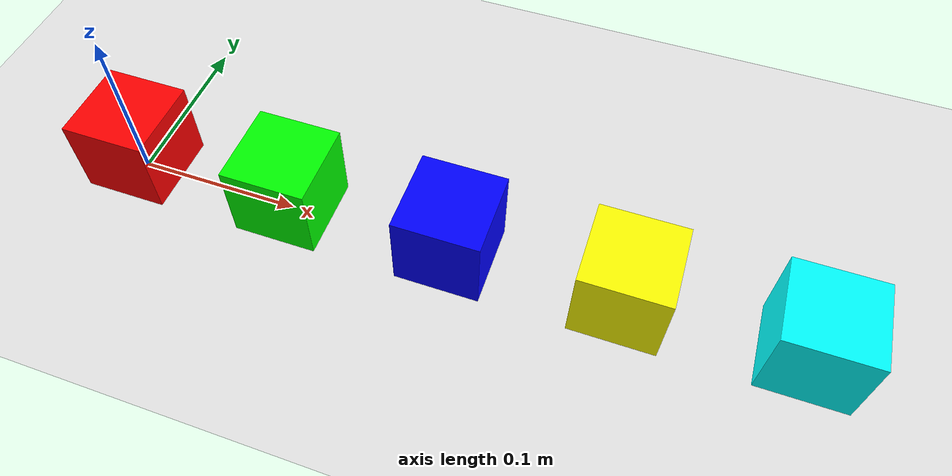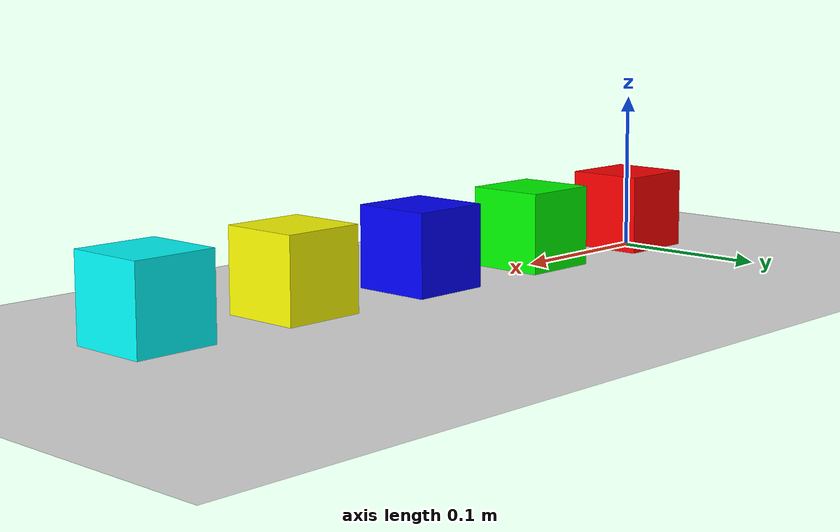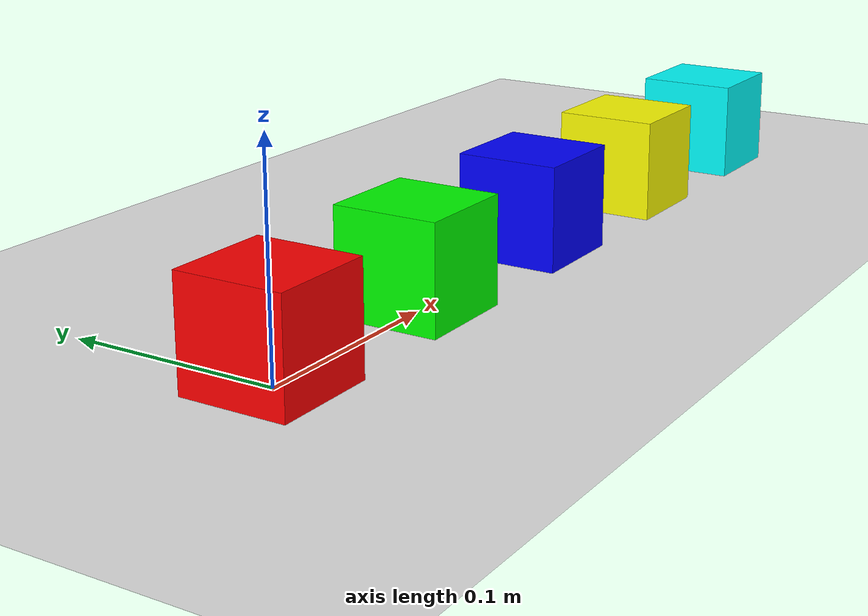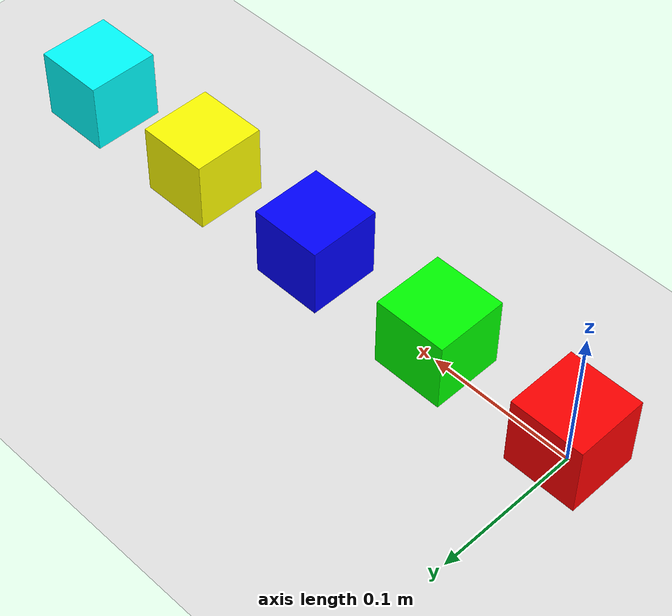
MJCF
<mujoco model="block_stacking">
  <compiler angle="radian" inertiafromgeom="true"/>
  <option gravity="0 0 -9.81" />
  <worldbody>
    <light diffuse=".5 .5 .5" pos="0 0 3" dir="0 0 -1"/>
    <geom type="plane" size="1 1 0.1" rgba=".9 .9 .9 1"/>
    <body name="object0" pos="0.0 0.0 0.025">
      <joint type="free" limited="false"/>
      <geom type="box" size="0.025 0.025 0.025" rgba="1 0 0 1" mass="0.1"/>
    </body>
    <body name="object1" pos="0.1 0.0 0.025">
      <joint type="free" limited="false"/>
      <geom type="box" size="0.025 0.025 0.025" rgba="0 1 0 1" mass="0.1"/>
    </body>
    <body name="object2" pos="0.2 0.0 0.025">
      <joint type="free" limited="false"/>
      <geom type="box" size="0.025 0.025 0.025" rgba="0 0 1 1" mass="0.1"/>
    </body>
    <body name="object3" pos="0.3 0.0 0.025">
      <joint type="free" limited="false"/>
      <geom type="box" size="0.025 0.025 0.025" rgba="1 1 0 1" mass="0.1"/>
    </body>
    <body name="object4" pos="0.4 0.0 0.025">
      <joint type="free" limited="false"/>
      <geom type="box" size="0.025 0.025 0.025" rgba="0 1 1 1" mass="0.1"/>
    </body>
  </worldbody>
</mujoco>
